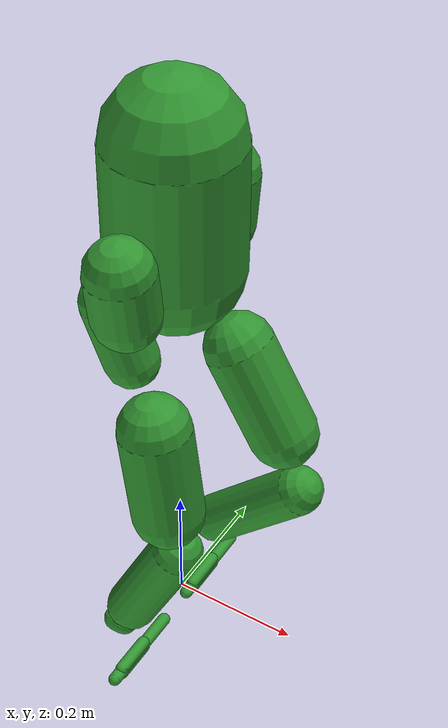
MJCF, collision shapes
<mujoco model="lerobot_humanoid_12dof">
  <compiler angle="radian" meshdir="assets" autolimits="true"/>

  <default>
    <default class="lerobot">
      <default class="visual">
        <geom group="2" type="mesh" density="0" material="silver" contype="0" conaffinity="0"/>
      </default>
      <default class="collision">
        <geom group="3" rgba=".2 .6 .2 .3" type="capsule" contype="1" conaffinity="1"/>
        <default class="foot_capsule">
          <geom type="capsule" size="0.01"/>
        </default>
      </default>
      <site group="5" rgba="1 0 0 1"/>
    </default>
  </default>

  <asset>
    <material name="silver" rgba="0.7 0.7 0.7 1"/>
    <material name="black" rgba="0.2 0.2 0.2 1"/>
    <material name="blue" rgba="0.231373 0.380392 0.705882 1"/>
    <material name="orange" rgba="0.972549 0.529412 0.00392157 1"/>
    <material name="lightblue" rgba="0.615686 0.811765 0.929412 1"/>

    <mesh name="torso22" file="torso22.stl"/>
    <mesh name="robstrideo0" file="robstrideo0.stl"/>
    <mesh name="torso12" file="torso12.stl"/>
    <mesh name="hipz12" file="hipz12.stl"/>
    <mesh name="robstride02" file="robstride02.stl"/>
    <mesh name="hipz22" file="hipz22.stl"/>
    <mesh name="hipxy" file="hipxy.stl"/>
    <mesh name="knee_rod22" file="knee_rod22.stl"/>
    <mesh name="robstrideo3" file="robstrideo3.stl"/>
    <mesh name="knee_rod12" file="knee_rod12.stl"/>
    <mesh name="knee_actuation" file="knee_actuation.stl"/>
    <mesh name="femur_22" file="femur_22.stl"/>
    <mesh name="femur_12" file="femur_12.stl"/>
    <mesh name="part_3" file="part_3.stl"/>
    <mesh name="rmdx43" file="rmdx43.stl"/>
    <mesh name="tibias22" file="tibias22.stl"/>
    <mesh name="actuation_ankle" file="actuation_ankle.stl"/>
    <mesh name="tibias12" file="tibias12.stl"/>
    <mesh name="ujoint" file="ujoint.stl"/>
    <mesh name="foot" file="foot.stl"/>
    <mesh name="hipz22_sym" file="hipz22_sym.stl"/>
    <mesh name="hipz12_sym" file="hipz12_sym.stl"/>
    <mesh name="hipxy_sym" file="hipxy_sym.stl"/>
    <mesh name="knee_rod22_sym" file="knee_rod22_sym.stl"/>
    <mesh name="femur_12_sym" file="femur_12_sym.stl"/>
    <mesh name="femur_22_sym" file="femur_22_sym.stl"/>
    <mesh name="knee_rod12_sym" file="knee_rod12_sym.stl"/>
    <mesh name="tibias12_sym" file="tibias12_sym.stl"/>
    <mesh name="tibias22_sym" file="tibias22_sym.stl"/>
    <mesh name="torso_meshe" file="torso_meshe.stl"/>
    <mesh name="shoulder1" file="shoulder1.stl"/>
    <mesh name="shoulder2" file="shoulder2.stl"/>
    <mesh name="shoulder1_part" file="shoulder1_part.stl"/>
    <mesh name="shoulder2_part" file="shoulder2_part.stl"/>
    <mesh name="bearing_holder_upperbody" file="bearing_holder_upperbody.stl"/>
    <mesh name="shoulder3_part" file="shoulder3_part.stl"/>
    <mesh name="forarm_part" file="forarm_part.stl"/>
    <mesh name="torso_pperbody_part" file="torso_pperbody_part.stl"/>
  </asset>

  <worldbody>
    <body name="base" pos="0 0 0.72" childclass="lerobot">
      <light pos="0 0 2" mode="trackcom"/>
      <camera name="tracking" pos="1.734 -1.135 .35" xyaxes="0.552 0.834 -0.000 -0.170 0.112 0.979" mode="trackcom"/>
      <inertial pos="0 0 0" mass="5.0" diaginertia="0.05 0.05 0.02"/>
      <freejoint name="floating_base_joint"/>

      <!-- Visual meshes for torso -->
      <geom class="visual" pos="-0.000261712 0.233572 -0.0901625" quat="1.86697e-07 -1.31359e-06 0.99005 -0.140713" mesh="torso22" material="blue"/>
      <geom class="visual" pos="0.672087 -0.147255 0.0629195" quat="0.00131867 -0.00114353 -0.655473 -0.755216" mesh="robstrideo0" material="blue"/>
      <geom class="visual" pos="0.672087 0.12555 0.0660044" quat="-0.00114353 0.00131866 0.755219 0.65547" mesh="robstrideo0" material="blue"/>
      <geom class="visual" pos="-0.000261712 4.03795e-07 -0.056966" quat="1.76037e-12 -1.32679e-06 -1 1.32679e-06" mesh="torso12" material="silver"/>
      <geom class="visual" pos="-0.000261712 4.03795e-07 -0.056966" quat="1.76045e-12 -1.32679e-06 -1 1.32679e-06" mesh="torso22" material="blue"/>
      <geom class="visual" pos="0.025 0.503548 0.0499987" quat="-1 2.65359e-06 0 0" mesh="torso_meshe" material="silver"/>
      <geom class="visual" pos="-0.0872593 -0.0522009 0.265098" quat="-0.0848174 -0.417826 -0.264103 0.865146" mesh="shoulder1" material="lightblue"/>
      <geom class="visual" pos="-0.0392561 -0.0511874 0.251582" quat="0.560057 0.0358126 0.597762 -0.57248" mesh="shoulder2" material="lightblue"/>
      <geom class="visual" pos="-0.0076143 0.0907452 0.254464" quat="0.851171 -0.218047 -0.443602 -0.176578" mesh="shoulder1_part" material="orange"/>
      <geom class="visual" pos="0.0145386 -0.0871188 0.209021" quat="-0.334809 -0.934655 0.0492556 0.109069" mesh="shoulder2_part" material="blue"/>
      <geom class="visual" pos="-0.0554512 -0.19219 0.091955" quat="0.917449 -0.232744 -0.295007 0.130721" mesh="bearing_holder_upperbody" material="silver"/>
      <geom class="visual" pos="0.0106264 -0.0781302 0.265738" quat="-0.701282 -0.487793 -0.400684 0.33123" mesh="bearing_holder_upperbody" material="silver"/>
      <geom class="visual" pos="0.191351 0.165659 0.127061" quat="-0.919895 -0.159921 -0.298903 -0.197168" mesh="shoulder3_part" material="silver"/>
      <geom class="visual" pos="0.162921 -0.199159 0.121232" quat="0.869203 -0.362747 -0.333087 0.0442065" mesh="forarm_part" material="lightblue"/>
      <geom class="visual" pos="-0.0205415 4.03795e-07 0.036034" mesh="torso_pperbody_part" material="orange"/>
      <geom class="visual" pos="-0.152957 0.177102 0.327008" quat="-0.295365 -0.95241 0.0361504 0.0660851" mesh="bearing_holder_upperbody" material="silver"/>
      <geom class="visual" pos="-0.136588 -0.20345 0.321519" quat="-0.115457 -0.86686 -0.476209 -0.0919186" mesh="bearing_holder_upperbody" material="silver"/>
      <geom class="visual" pos="0.191511 0.165136 0.126814" quat="0.245188 -0.920275 -0.0658203 -0.29773" mesh="forarm_part" material="lightblue"/>
      <geom class="visual" pos="-0.0081198 -0.0903541 0.254198" quat="0.526276 -0.126652 -0.477796 0.691884" mesh="shoulder1_part" material="orange"/>
      <geom class="visual" pos="0.0195138 0.0908249 0.211616" quat="0.409445 -0.910691 -0.0526885 0.0148801" mesh="shoulder2_part" material="blue"/>
      <geom class="visual" pos="-0.0221671 0.208312 0.092862" quat="-0.784041 -0.472423 0.392143 0.0912162" mesh="bearing_holder_upperbody" material="silver"/>
      <geom class="visual" pos="0.0103965 0.034758 0.220905" quat="-0.211501 -0.845919 -0.475646 -0.115976" mesh="bearing_holder_upperbody" material="silver"/>
      <geom class="visual" pos="0.162823 -0.199599 0.121628" quat="-0.287759 -0.850148 0.22524 0.379092" mesh="shoulder3_part" material="silver"/>

      <!-- Torso collision -->
      <geom name="torso_collision" class="collision" size="0.1" fromto="0 0 -0.05 0 0 0.15"/>

      <!-- IMU site -->
      <site name="imu_in_base" size="0.01" pos="0 0 0"/>

      <!-- RIGHT LEG -->
      <body name="right_hip_z_link" pos="-0.000819037 -0.133159 0.04164" quat="0.821909 0.0571232 0.0414079 -0.565233">
        <inertial pos="-0.0179437 -0.0274254 -0.0837243" quat="0.401109 0.424615 -0.783452 0.212171" mass="0.794013" diaginertia="0.00115064 0.000967835 0.000726741"/>
        <joint name="right_hip_z_joint" pos="0 0 0" axis="0 0 1" range="-1.57 1.57"/>
        <geom class="visual" pos="0 0 -0.1" quat="1.32679e-06 -1 0 0" mesh="hipz12" material="blue"/>
        <geom class="visual" pos="-0.575896 0.0494047 -0.172196" quat="0.792907 -0.60316 -0.052417 -0.0689069" mesh="robstride02" material="lightblue"/>
        <geom class="visual" pos="0 0 -0.1" quat="1.32679e-06 -1 0 0" mesh="hipz22" material="silver"/>
        <geom name="right_hip_z_collision" class="collision" size="0.05" fromto="0 0 -0.02 0 0 -0.1"/>

        <body name="right_hip_x_link" pos="-0.01897 -0.0289 -0.09689" quat="0.388857 0.132751 0.0879726 -0.907429">
          <inertial pos="0.00476547 -0.00266343 -0.0607297" quat="0.916918 -0.328471 -0.0265972 0.225082" mass="0.241618" diaginertia="0.000514846 0.000474201 0.00039973"/>
          <joint name="right_hip_x_joint" pos="0 0 0" axis="0 0 1" range="-0.52 2.97"/>
          <geom class="visual" mesh="hipxy" material="silver"/>
          <geom name="right_hip_x_collision" class="collision" size="0.04" fromto="0 0 0 0 0 -0.1"/>

          <body name="right_hip_y_link" pos="0.012638 -0.0276823 -0.112055" quat="0.3075 0.0287184 0.729949 -0.609748">
            <inertial pos="0.0501976 0.0785779 -0.0353813" quat="0.64331 0.334215 -0.585819 0.362311" mass="2.5804" diaginertia="0.0237789 0.0223377 0.0035913"/>
            <joint name="right_hip_y_joint" pos="0 0 0" axis="0 0 1" range="-2.53 2.88"/>
            <geom class="visual" pos="0.210506 0.184547 -0.0305" quat="0.612371 0.612373 -0.353555 -0.353553" mesh="knee_rod22" material="lightblue"/>
            <geom class="visual" pos="-0.437806 0.570998 -0.07" quat="0.683011 -0.683014 0.183013 -0.183012" mesh="robstrideo3" material="silver"/>
            <geom class="visual" pos="0.210506 0.184547 -0.0305" quat="0.612371 0.612373 -0.353555 -0.353553" mesh="knee_rod12" material="lightblue"/>
            <geom class="visual" pos="0.058 0.324459 -0.0305" quat="0.707105 0.707108 0 0" mesh="knee_actuation" material="silver"/>
            <geom class="visual" pos="0.17 0.294449 -0.0305" quat="0.683011 0.683014 -0.183013 -0.183012" mesh="femur_22" material="silver"/>
            <geom class="visual" pos="0.17 0.294449 -0.0305" quat="0.683011 0.683014 -0.183013 -0.183012" mesh="femur_12" material="lightblue"/>
            <geom class="visual" pos="0 0 -0.0938" quat="0.183014 -0.683011 0.183014 0.683014" mesh="part_3" material="blue"/>
            <geom class="visual" pos="-0.495806 0.470539 -0.0275" quat="0.683011 -0.683014 0.183013 -0.183012" mesh="robstrideo3" material="silver"/>
            <geom name="right_thigh_collision" class="collision" size="0.055" fromto="0.05 0.1 -0.03 0.1 0.25 -0.03"/>

            <body name="right_knee_link" pos="0.17 0.294449 -0.0305" quat="1.26691e-06 0.954863 -0.297046 -3.94118e-07">
              <inertial pos="-0.0754732 -0.0505369 6.35117e-05" quat="-0.234536 0.671141 0.137741 0.68963" mass="0.593267" diaginertia="0.00176325 0.00172799 0.000245834"/>
              <joint name="right_knee_joint" pos="0 0 0" axis="0 0 1" range="-0.087 2.88"/>
              <geom class="visual" pos="-0.304936 0.362963 0.019" quat="0.620646 0.620648 -0.338818 -0.338816" mesh="rmdx43" material="orange"/>
              <geom class="visual" pos="-0.218697 -0.140611 0.019" quat="0.620646 -0.620648 0.338818 -0.338816" mesh="tibias22" material="silver"/>
              <geom class="visual" pos="-0.0331382 0.124911 -0.019" quat="0.706617 0.706619 -0.0262877 -0.0262876" mesh="actuation_ankle" material="blue"/>
              <geom class="visual" pos="-0.349517 0.3343 0.006" quat="0.620646 0.620648 -0.338818 -0.338816" mesh="rmdx43" material="orange"/>
              <geom class="visual" pos="-0.218697 -0.140611 0.019" quat="0.620646 -0.620648 0.338818 -0.338816" mesh="tibias12" material="lightblue"/>
              <geom class="visual" pos="-0.100604 -0.2109 0.019" quat="0.706617 -0.706619 0.0262877 -0.0262876" mesh="actuation_ankle" material="blue"/>
              <geom name="right_shin_collision" class="collision" size="0.04" fromto="-0.05 0 0 -0.2 -0.13 0"/>

              <body name="right_ankle_y_link" pos="-0.211522 -0.151191 0.02" quat="1.10817e-06 0.835222 0.549913 7.29622e-07">
                <inertial pos="-1.62086e-08 -0.000727483 0.02" mass="0.0168168" diaginertia="5.19458e-06 4.86353e-06 8.35665e-07"/>
                <joint name="right_ankle_y_joint" pos="0 0 0" axis="0 0 1" range="-0.87 0.52"/>
                <geom class="visual" pos="0 0 0.0195" quat="9.38184e-07 0.707105 9.38187e-07 -0.707108" mesh="part_3" material="blue"/>
                <geom name="right_ankle_y_collision" class="collision" size="0.02" fromto="0 0 0 0 -0.015 0"/>

                <body name="right_ankle_x_link" pos="0 -0.01594 0.02" quat="0.499998 0.5 0.5 -0.500002">
                  <inertial pos="8.52312e-09 -0.0138418 -0.052232" quat="0.705627 0.0421767 -0.042203 0.706067" mass="0.122498" diaginertia="0.000163602 0.000163413 6.9433e-05"/>
                  <joint name="right_ankle_x_joint" pos="0 0 0" axis="0 0 1" range="-0.26 0.26"/>
                  <geom class="visual" pos="0 -0.035 -0.0385" quat="0.499998 -0.5 -0.5 -0.500002" mesh="foot" material="silver"/>
                  <site name="right_foot" rgba="1 0 0 1" pos="0.04 -0.035 -0.055"/>
                  <!-- Foot collision capsules -->
                  <geom name="right_foot1_collision" class="foot_capsule" fromto="0.08 -0.03 -0.05 0.02 -0.03 -0.05"/>
                  <geom name="right_foot2_collision" class="foot_capsule" fromto="-0.04 -0.035 -0.05 0.10 -0.035 -0.05"/>
                  <geom name="right_foot3_collision" class="foot_capsule" fromto="0.08 -0.04 -0.05 0.02 -0.04 -0.05"/>
                </body>
              </body>
            </body>
          </body>
        </body>
      </body>

      <!-- LEFT LEG -->
      <body name="left_hip_z_link" pos="-0.000819037 0.13316 0.04164" quat="0.826606 -0.0574677 0.0409287 0.558341">
        <inertial pos="-0.0179432 0.0274245 -0.0837272" quat="0.424685 0.401162 -0.212175 0.783386" mass="0.794016" diaginertia="0.0011506 0.000967878 0.000726822"/>
        <joint name="left_hip_z_joint" pos="0 0 0" axis="0 0 1" range="-1.57 1.57"/>
        <geom class="visual" pos="-0.575896 0.057308 -0.20175" quat="0.603161 -0.792907 -0.068907 -0.0524169" mesh="robstride02" material="lightblue"/>
        <geom class="visual" pos="0 0 0.1" quat="1 0 0 0" mesh="hipz22_sym" material="blue"/>
        <geom class="visual" pos="0 0 0.1" quat="1 0 0 0" mesh="hipz12_sym" material="silver"/>
        <geom name="left_hip_z_collision" class="collision" size="0.05" fromto="0 0 -0.02 0 0 -0.1"/>

        <body name="left_hip_x_link" pos="-0.01897 0.0289 -0.09689" quat="0.379002 -0.131789 0.0894063 0.91159">
          <inertial pos="0.0047654 0.00266393 -0.0607296" quat="0.916914 0.328483 -0.0266015 -0.225077" mass="0.241619" diaginertia="0.000514848 0.000474202 0.000399736"/>
          <joint name="left_hip_x_joint" pos="0 0 0" axis="0 0 1" range="-2.97 0.52"/>
          <geom class="visual" quat="1.32679e-06 -1 0 0" mesh="hipxy_sym" material="silver"/>
          <geom name="left_hip_x_collision" class="collision" size="0.04" fromto="0 0 0 0 0 -0.1"/>

          <body name="left_hip_y_link" pos="0.012638 0.0276823 -0.112055" quat="-0.0382843 0.339833 0.646657 0.681823">
            <inertial pos="-0.0431321 -0.0830741 -0.0353867" quat="0.584181 0.376186 -0.634805 0.337993" mass="2.5804" diaginertia="0.0240047 0.0225643 0.00359599"/>
            <joint name="left_hip_y_joint" pos="0 0 0" axis="0 0 1" range="-2.53 2.88"/>
            <geom class="visual" pos="-0.058 -0.280519 0.0295" quat="0.707105 -0.707108 0 0" mesh="knee_rod22_sym" material="lightblue"/>
            <geom class="visual" pos="0 0 -0.0938" quat="0.683011 0.183012 0.683014 -0.183013" mesh="part_3" material="blue"/>
            <geom class="visual" pos="-0.17 -0.294449 0.0295" quat="0.683011 -0.683014 0.183013 -0.183012" mesh="femur_12_sym" material="lightblue"/>
            <geom class="visual" pos="-0.058 0.123541 -0.0305" quat="0.707105 0.707108 0 0" mesh="knee_actuation" material="silver"/>
            <geom class="visual" pos="-0.17 -0.294449 0.0295" quat="0.683011 -0.683014 0.183013 -0.183012" mesh="femur_22_sym" material="silver"/>
            <geom class="visual" pos="0.655402 -0.194111 -0.0025" quat="0.183014 0.183014 0.683014 0.683011" mesh="robstrideo3" material="silver"/>
            <geom class="visual" pos="-0.058 -0.280519 0.0295" quat="0.707105 -0.707108 0 0" mesh="knee_rod12_sym" material="lightblue"/>
            <geom class="visual" pos="0.597402 -0.29457 -0.045" quat="0.183014 0.183014 0.683014 0.683011" mesh="robstrideo3" material="silver"/>
            <geom name="left_thigh_collision" class="collision" size="0.055" fromto="-0.05 -0.1 -0.03 -0.1 -0.25 -0.03"/>

            <body name="left_knee_link" pos="-0.17 -0.294449 -0.0305" quat="0.766698 0 0 -0.642008">
              <inertial pos="0.00142213 -0.0907873 -1.51262e-05" quat="0.519893 0.470365 -0.498299 0.510065" mass="0.593266" diaginertia="0.00176327 0.00173466 0.000237587"/>
              <joint name="left_knee_joint" pos="0 0 0" axis="0 0 1" range="-0.087 2.88"/>
              <geom class="visual" pos="0 -0.26 0.067" quat="0.707105 -0.707108 0 0" mesh="tibias12_sym" material="lightblue"/>
              <geom class="visual" pos="0.12299 -0.14568 0.0195" quat="0.632813 -0.632815 -0.31551 0.315509" mesh="actuation_ankle" material="blue"/>
              <geom class="visual" pos="0.470217 -0.113201 -0.006" quat="9.38184e-07 -9.38187e-07 0.707108 -0.707105" mesh="rmdx43" material="orange"/>
              <geom class="visual" pos="0.470217 -0.0457991 0.006" quat="9.38184e-07 9.38187e-07 -0.707108 -0.707105" mesh="rmdx43" material="orange"/>
              <geom class="visual" pos="0 -0.26 0.067" quat="0.707105 -0.707108 0 0" mesh="tibias22_sym" material="silver"/>
              <geom class="visual" pos="-0.12299 -0.0133205 -0.0195" quat="0.632813 0.632815 0.31551 0.315509" mesh="actuation_ankle" material="blue"/>
              <geom name="left_shin_collision" class="collision" size="0.04" fromto="0.05 0 0 0 -0.2 0"/>

              <body name="left_ankle_y_link" pos="0 -0.26 -0.02" quat="0.87107 0 0 -0.491159">
                <inertial pos="1.62086e-08 -0.000727483 0.02" mass="0.0168168" diaginertia="5.19458e-06 4.86353e-06 8.35665e-07"/>
                <joint name="left_ankle_y_joint" pos="0 0 0" axis="0 0 1" range="-0.87 0.52"/>
                <geom class="visual" pos="0 0 0.02" quat="9.38184e-07 -0.707105 -9.38187e-07 -0.707108" mesh="ujoint" material="lightblue"/>
                <geom class="visual" pos="0 0 0.0205" quat="9.38184e-07 -0.707105 -9.38187e-07 -0.707108" mesh="part_3" material="blue"/>
                <geom class="visual" pos="0 0 0.0195" quat="9.38184e-07 0.707105 9.38187e-07 -0.707108" mesh="part_3" material="blue"/>
                <geom name="left_ankle_y_collision" class="collision" size="0.02" fromto="0 0 0 0 -0.015 0"/>

                <body name="left_ankle_x_link" pos="0 -0.01594 0.02" quat="0.50166 0.501662 -0.498332 0.498334">
                  <inertial pos="8.52312e-09 -0.0138418 -0.052232" quat="0.705627 0.0421767 -0.042203 0.706067" mass="0.122498" diaginertia="0.000163602 0.000163413 6.9433e-05"/>
                  <joint name="left_ankle_x_joint" pos="0 0 0" axis="0 0 1" range="-0.26 0.26"/>
                  <geom class="visual" pos="0 -0.035 -0.0385" quat="0.499998 -0.5 -0.5 -0.500002" mesh="foot" material="silver"/>
                  <site name="left_foot" rgba="2 0 0 1" pos="0.04 -0.035 -0.055"/>
                  <!-- Foot collision capsules -->
                  <geom name="left_foot1_collision" class="foot_capsule" fromto="0.08 -0.03 -0.05 0.02 -0.03 -0.05"/>
                  <geom name="left_foot2_collision" class="foot_capsule" fromto="-0.04 -0.035 -0.05 0.10 -0.035 -0.05"/>
                  <geom name="left_foot3_collision" class="foot_capsule" fromto="0.08 -0.04 -0.05 0.02 -0.04 -0.05"/>
                </body>
              </body>
            </body>
          </body>
        </body>
      </body>
    </body>
  </worldbody>

  <contact>
    <exclude body1="base" body2="right_hip_x_link"/>
    <exclude body1="base" body2="left_hip_x_link"/>
  </contact>

  <sensor>
    <gyro name="imu_ang_vel" site="imu_in_base"/>
    <velocimeter name="imu_lin_vel" site="imu_in_base"/>
    <accelerometer name="imu_lin_acc" site="imu_in_base"/>
    <subtreeangmom name="root_angmom" body="base"/>
  </sensor>
</mujoco>
